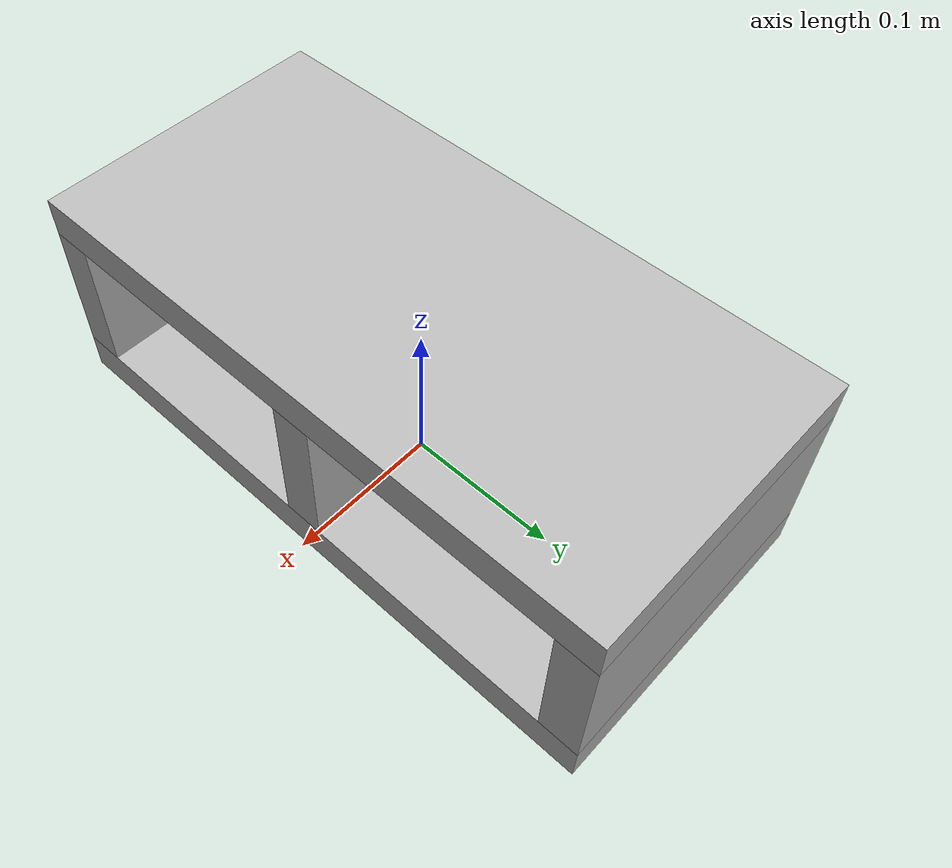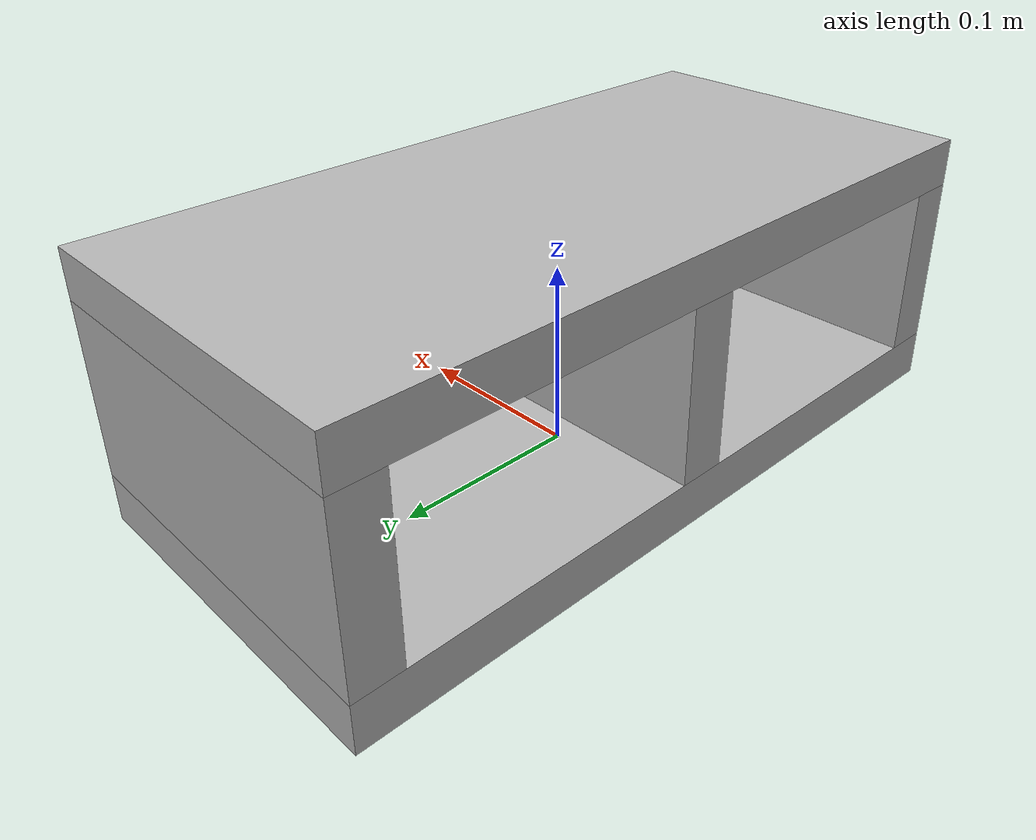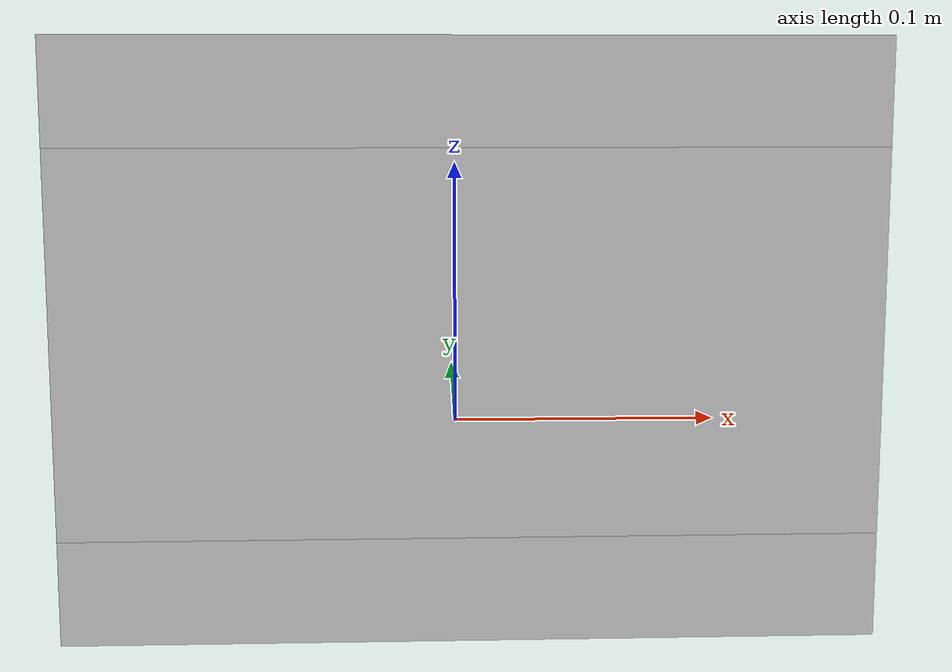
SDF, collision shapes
<?xml version='1.0'?>
<sdf version='1.7'>
  <model name='cinder_block_2'>
    <link name='link'>
      <inertial>
        <pose>0 0 0.071438 0 -0 0</pose>
        <mass>5</mass>
        <inertia>
          <ixx>0.06908</ixx>
          <ixy>0</ixy>
          <iyy>0.028705</iyy>
          <ixz>0</ixz>
          <iyz>0</iyz>
          <izz>0.073708</izz>
        </inertia>
      </inertial>
      <self_collide>0</self_collide>
      <enable_wind>0</enable_wind>
      <kinematic>0</kinematic>
      <pose>0 0 0 0 -0 0</pose>
      <visual name='visual'>
        <geometry>
          <mesh>
            <uri>model://cinder_block_2/meshes/cinder_block.dae</uri>
          </mesh>
        </geometry>
        <material>
          <shader type='pixel'/>
        </material>
        <pose>0 0 0 0 -0 0</pose>
        <transparency>0</transparency>
        <cast_shadows>1</cast_shadows>
      </visual>
      <collision name='top'>
        <laser_retro>0</laser_retro>
        <max_contacts>10</max_contacts>
        <pose>0 0 0.130175 0 -0 0</pose>
        <geometry>
          <box>
            <size>0.19368 0.396875 0.0254</size>
          </box>
        </geometry>
        <surface>
          <friction>
            <ode>
              <mu>1</mu>
              <mu2>1</mu2>
              <fdir1>0 0 0</fdir1>
              <slip1>0</slip1>
              <slip2>0</slip2>
            </ode>
            <torsional>
              <coefficient>1</coefficient>
              <patch_radius>0</patch_radius>
              <surface_radius>0</surface_radius>
              <use_patch_radius>1</use_patch_radius>
              <ode>
                <slip>0</slip>
              </ode>
            </torsional>
          </friction>
          <bounce>
            <restitution_coefficient>0</restitution_coefficient>
            <threshold>1e+06</threshold>
          </bounce>
          <contact>
            <collide_without_contact>0</collide_without_contact>
            <collide_without_contact_bitmask>1</collide_without_contact_bitmask>
            <collide_bitmask>1</collide_bitmask>
            <ode>
              <soft_cfm>0</soft_cfm>
              <soft_erp>0.2</soft_erp>
              <kp>1e+13</kp>
              <kd>1</kd>
              <max_vel>0.1</max_vel>
              <min_depth>0.001</min_depth>
            </ode>
            <bullet>
              <split_impulse>1</split_impulse>
              <split_impulse_penetration_threshold>-0.01</split_impulse_penetration_threshold>
              <soft_cfm>0</soft_cfm>
              <soft_erp>0.2</soft_erp>
              <kp>1e+13</kp>
              <kd>1</kd>
            </bullet>
          </contact>
        </surface>
      </collision>
      <collision name='bottom'>
        <laser_retro>0</laser_retro>
        <max_contacts>10</max_contacts>
        <pose>0 0 0.0127 0 -0 0</pose>
        <geometry>
          <box>
            <size>0.19368 0.396875 0.0254</size>
          </box>
        </geometry>
        <surface>
          <friction>
            <ode>
              <mu>1</mu>
              <mu2>1</mu2>
              <fdir1>0 0 0</fdir1>
              <slip1>0</slip1>
              <slip2>0</slip2>
            </ode>
            <torsional>
              <coefficient>1</coefficient>
              <patch_radius>0</patch_radius>
              <surface_radius>0</surface_radius>
              <use_patch_radius>1</use_patch_radius>
              <ode>
                <slip>0</slip>
              </ode>
            </torsional>
          </friction>
          <bounce>
            <restitution_coefficient>0</restitution_coefficient>
            <threshold>1e+06</threshold>
          </bounce>
          <contact>
            <collide_without_contact>0</collide_without_contact>
            <collide_without_contact_bitmask>1</collide_without_contact_bitmask>
            <collide_bitmask>1</collide_bitmask>
            <ode>
              <soft_cfm>0</soft_cfm>
              <soft_erp>0.2</soft_erp>
              <kp>1e+13</kp>
              <kd>1</kd>
              <max_vel>0.1</max_vel>
              <min_depth>0.001</min_depth>
            </ode>
            <bullet>
              <split_impulse>1</split_impulse>
              <split_impulse_penetration_threshold>-0.01</split_impulse_penetration_threshold>
              <soft_cfm>0</soft_cfm>
              <soft_erp>0.2</soft_erp>
              <kp>1e+13</kp>
              <kd>1</kd>
            </bullet>
          </contact>
        </surface>
      </collision>
      <collision name='left'>
        <laser_retro>0</laser_retro>
        <max_contacts>10</max_contacts>
        <pose>0 -0.185738 0.071438 0 -0 0</pose>
        <geometry>
          <box>
            <size>0.19368 0.0254 0.092075</size>
          </box>
        </geometry>
        <surface>
          <friction>
            <ode>
              <mu>1</mu>
              <mu2>1</mu2>
              <fdir1>0 0 0</fdir1>
              <slip1>0</slip1>
              <slip2>0</slip2>
            </ode>
            <torsional>
              <coefficient>1</coefficient>
              <patch_radius>0</patch_radius>
              <surface_radius>0</surface_radius>
              <use_patch_radius>1</use_patch_radius>
              <ode>
                <slip>0</slip>
              </ode>
            </torsional>
          </friction>
          <bounce>
            <restitution_coefficient>0</restitution_coefficient>
            <threshold>1e+06</threshold>
          </bounce>
          <contact>
            <collide_without_contact>0</collide_without_contact>
            <collide_without_contact_bitmask>1</collide_without_contact_bitmask>
            <collide_bitmask>1</collide_bitmask>
            <ode>
              <soft_cfm>0</soft_cfm>
              <soft_erp>0.2</soft_erp>
              <kp>1e+13</kp>
              <kd>1</kd>
              <max_vel>0.1</max_vel>
              <min_depth>0.001</min_depth>
            </ode>
            <bullet>
              <split_impulse>1</split_impulse>
              <split_impulse_penetration_threshold>-0.01</split_impulse_penetration_threshold>
              <soft_cfm>0</soft_cfm>
              <soft_erp>0.2</soft_erp>
              <kp>1e+13</kp>
              <kd>1</kd>
            </bullet>
          </contact>
        </surface>
      </collision>
      <collision name='right'>
        <laser_retro>0</laser_retro>
        <max_contacts>10</max_contacts>
        <pose>0 0.185738 0.071438 0 -0 0</pose>
        <geometry>
          <box>
            <size>0.19368 0.0254 0.092075</size>
          </box>
        </geometry>
        <surface>
          <friction>
            <ode>
              <mu>1</mu>
              <mu2>1</mu2>
              <fdir1>0 0 0</fdir1>
              <slip1>0</slip1>
              <slip2>0</slip2>
            </ode>
            <torsional>
              <coefficient>1</coefficient>
              <patch_radius>0</patch_radius>
              <surface_radius>0</surface_radius>
              <use_patch_radius>1</use_patch_radius>
              <ode>
                <slip>0</slip>
              </ode>
            </torsional>
          </friction>
          <bounce>
            <restitution_coefficient>0</restitution_coefficient>
            <threshold>1e+06</threshold>
          </bounce>
          <contact>
            <collide_without_contact>0</collide_without_contact>
            <collide_without_contact_bitmask>1</collide_without_contact_bitmask>
            <collide_bitmask>1</collide_bitmask>
            <ode>
              <soft_cfm>0</soft_cfm>
              <soft_erp>0.2</soft_erp>
              <kp>1e+13</kp>
              <kd>1</kd>
              <max_vel>0.1</max_vel>
              <min_depth>0.001</min_depth>
            </ode>
            <bullet>
              <split_impulse>1</split_impulse>
              <split_impulse_penetration_threshold>-0.01</split_impulse_penetration_threshold>
              <soft_cfm>0</soft_cfm>
              <soft_erp>0.2</soft_erp>
              <kp>1e+13</kp>
              <kd>1</kd>
            </bullet>
          </contact>
        </surface>
      </collision>
      <collision name='middle'>
        <laser_retro>0</laser_retro>
        <max_contacts>10</max_contacts>
        <pose>0 0 0.071438 0 -0 0</pose>
        <geometry>
          <box>
            <size>0.19368 0.0254 0.092075</size>
          </box>
        </geometry>
        <surface>
          <friction>
            <ode>
              <mu>1</mu>
              <mu2>1</mu2>
              <fdir1>0 0 0</fdir1>
              <slip1>0</slip1>
              <slip2>0</slip2>
            </ode>
            <torsional>
              <coefficient>1</coefficient>
              <patch_radius>0</patch_radius>
              <surface_radius>0</surface_radius>
              <use_patch_radius>1</use_patch_radius>
              <ode>
                <slip>0</slip>
              </ode>
            </torsional>
          </friction>
          <bounce>
            <restitution_coefficient>0</restitution_coefficient>
            <threshold>1e+06</threshold>
          </bounce>
          <contact>
            <collide_without_contact>0</collide_without_contact>
            <collide_without_contact_bitmask>1</collide_without_contact_bitmask>
            <collide_bitmask>1</collide_bitmask>
            <ode>
              <soft_cfm>0</soft_cfm>
              <soft_erp>0.2</soft_erp>
              <kp>1e+13</kp>
              <kd>1</kd>
              <max_vel>0.1</max_vel>
              <min_depth>0.001</min_depth>
            </ode>
            <bullet>
              <split_impulse>1</split_impulse>
              <split_impulse_penetration_threshold>-0.01</split_impulse_penetration_threshold>
              <soft_cfm>0</soft_cfm>
              <soft_erp>0.2</soft_erp>
              <kp>1e+13</kp>
              <kd>1</kd>
            </bullet>
          </contact>
        </surface>
      </collision>
    </link>
    <static>0</static>
    <allow_auto_disable>1</allow_auto_disable>
  </model>
</sdf>
